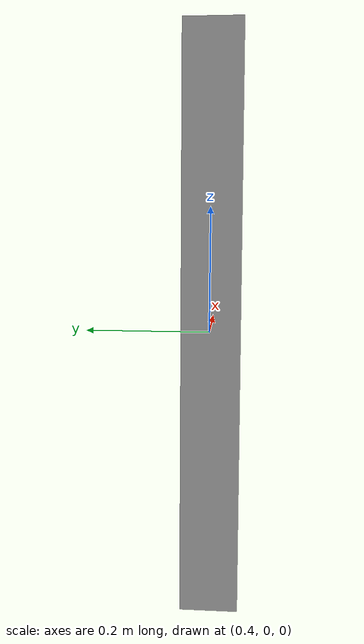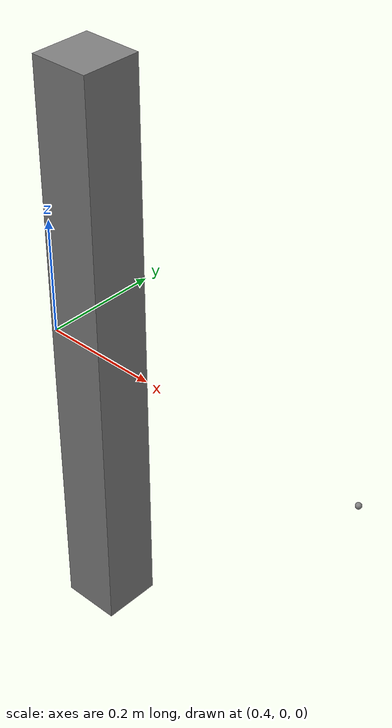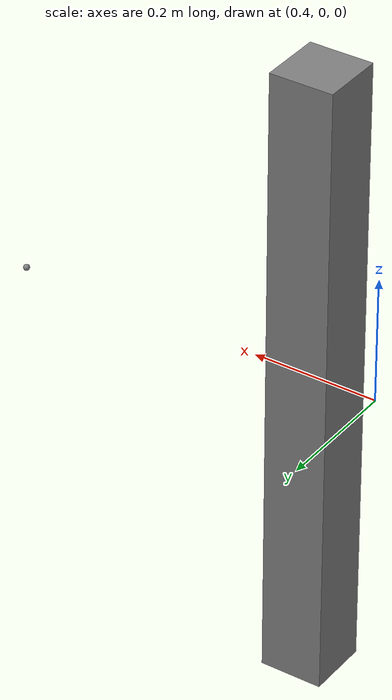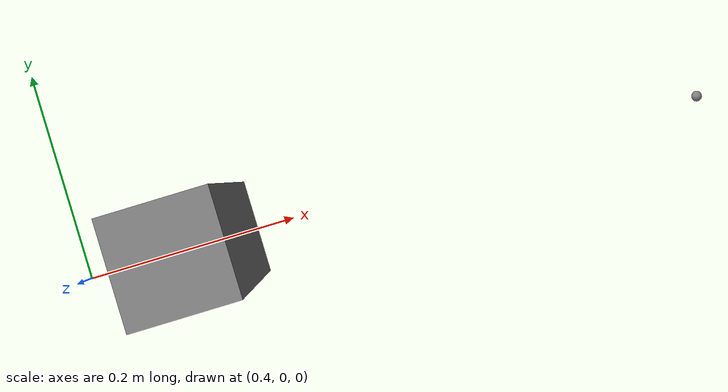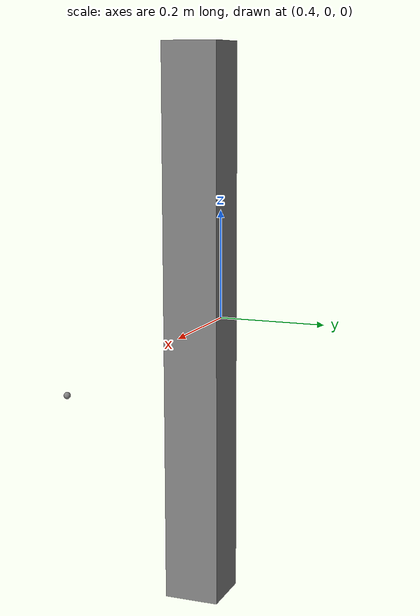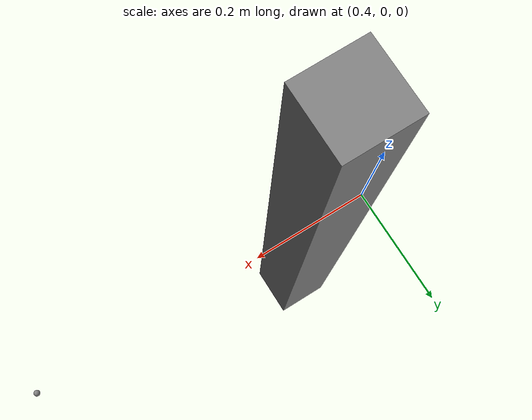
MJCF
<!-- P1 单元测试用 MJCF 场景。
     单铰链摆：质心相对铰链沿 x 偏置，重力作用下 qacc 非零；
     含一个 motor 执行器用于 set_ctrl 验证。 -->
<mujoco model="test_p1_scene">
  <option timestep="0.002" integrator="RK4" gravity="0 0 -9.81"/>
  <worldbody>
    <body name="pendulum" pos="0 0 0">
      <joint name="hinge" type="hinge" axis="0 1 0" pos="0 0 0"/>
      <geom name="arm" type="box" size="0.05 0.05 0.5" pos="0.5 0 0" mass="1"/>
      <site name="tip" pos="1.0 0 0"/>
    </body>
  </worldbody>
  <actuator>
    <motor name="hinge_motor" joint="hinge" gear="1"/>
  </actuator>
</mujoco>
